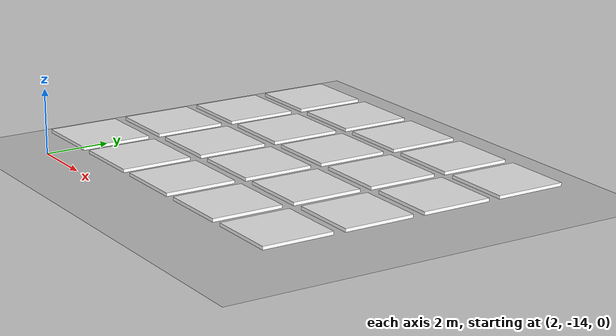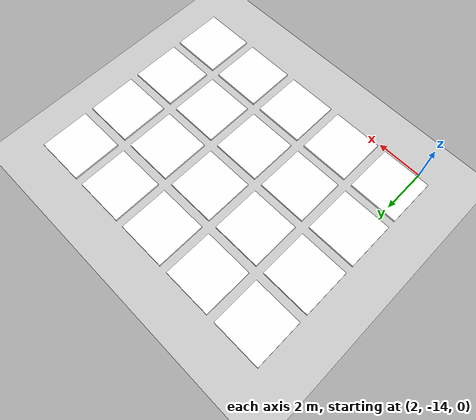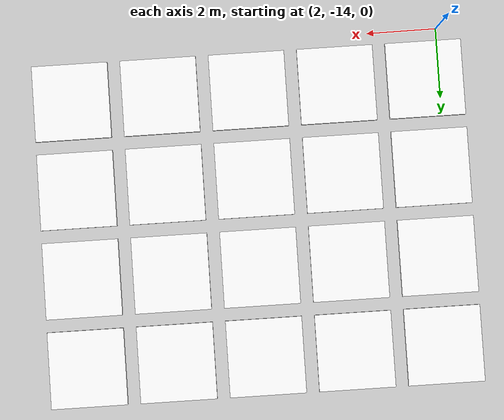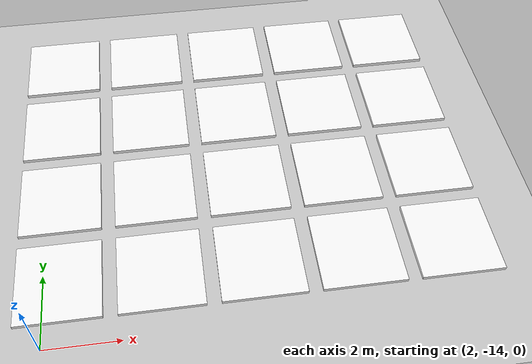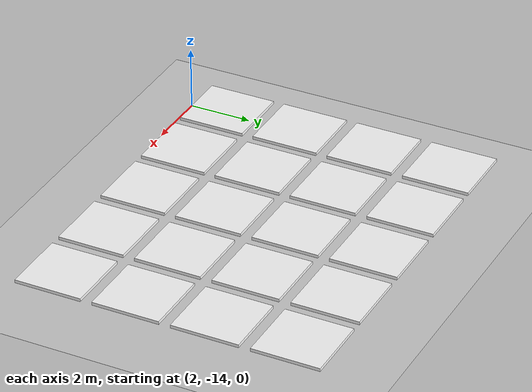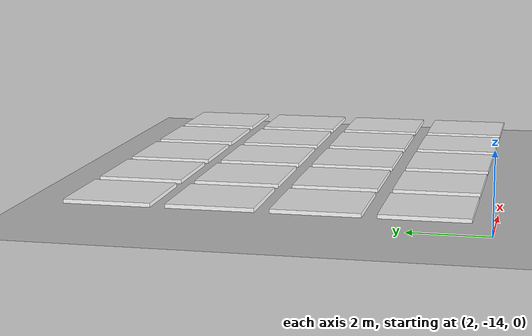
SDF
<sdf version="1.7">
 <world name="default">
  <model name="ground_plane">
   <static>1</static>
   <link name="link">
    <collision name="collision">
     <geometry><plane><normal>0 0 1</normal><size>100 100</size></plane></geometry>
     <surface>
      <contact><collide_bitmask>65535</collide_bitmask></contact>
      <friction><ode><mu>100</mu><mu2>50</mu2></ode></friction>
     </surface>
    </collision>
    <visual name="visual">
     <cast_shadows>0</cast_shadows>
     <geometry><plane><normal>0 0 1</normal><size>100 100</size></plane></geometry>
     <material>
      <script><uri>file://media/materials/scripts/gazebo.material</uri><name>Gazebo/Grey</name></script>
     </material>
    </visual>
   </link>
  </model>
  <model name="top_view_fuel_cluster_1_6">
   <link name="link">
    <inertial>
     <mass>0.489843</mass>
     <inertia>
      <ixx>0.0410659</ixx>
      <ixy>0</ixy>
      <ixz>0</ixz>
      <iyy>0.0410658</iyy>
      <iyz>0</iyz>
      <izz>0.0816405</izz>
     </inertia>
    </inertial>
    <visual name="visual">
     <geometry><box><size>2.14 2.14 0.099999</size></box></geometry>
     <material>
      <script>
       <uri>model://top_view_fuel_cluster/materials/scripts</uri>
       <uri>model://top_view_fuel_cluster/materials/textures</uri>
       <name>snf/Diffuse</name>
      </script>
      <shader type="pixel"><normal_map>__default__</normal_map></shader>
      <ambient>0.3 0.3 0.3 1</ambient>
      <diffuse>1 1 1 1</diffuse>
      <specular>0.01 0.01 0.01 1</specular>
      <emissive>0 0 0 1</emissive>
     </material>
    </visual>
    <collision name="collision">
     <geometry><box><size>2.14 2.14 0.100001</size></box></geometry>
     <surface>
      <friction>
       <ode><mu>1</mu><mu2>1</mu2><fdir1>0 0 0</fdir1><slip1>0</slip1><slip2>0</slip2></ode>
       <torsional>
        <coefficient>1</coefficient>
        <patch_radius>0</patch_radius>
        <surface_radius>0</surface_radius>
        <use_patch_radius>1</use_patch_radius>
        <ode><slip>0</slip></ode>
       </torsional>
      </friction>
      <bounce><restitution_coefficient>0</restitution_coefficient><threshold>1e+06</threshold></bounce>
      <contact>
       <collide_without_contact>0</collide_without_contact>
       <collide_without_contact_bitmask>1</collide_without_contact_bitmask>
       <collide_bitmask>1</collide_bitmask>
       <ode>
        <soft_cfm>0</soft_cfm>
        <soft_erp>0.2</soft_erp>
        <kp>1e+13</kp>
        <kd>1</kd>
        <max_vel>0.01</max_vel>
        <min_depth>0</min_depth>
       </ode>
       <bullet>
        <split_impulse>1</split_impulse>
        <split_impulse_penetration_threshold>-0.01</split_impulse_penetration_threshold>
        <soft_cfm>0</soft_cfm>
        <soft_erp>0.2</soft_erp>
        <kp>1e+13</kp>
        <kd>1</kd>
       </bullet>
      </contact>
     </surface>
    </collision>
   </link>
   <static>0</static>
   <pose>2.5 -12.5 0.5 0 -0 0</pose>
  </model>
  <model name="top_view_fuel_cluster_1_7">
   <link name="link">
    <inertial>
     <mass>0.489843</mass>
     <inertia>
      <ixx>0.0410659</ixx>
      <ixy>0</ixy>
      <ixz>0</ixz>
      <iyy>0.0410658</iyy>
      <iyz>0</iyz>
      <izz>0.0816405</izz>
     </inertia>
    </inertial>
    <visual name="visual">
     <geometry><box><size>2.14 2.14 0.099999</size></box></geometry>
     <material>
      <script>
       <uri>model://top_view_fuel_cluster/materials/scripts</uri>
       <uri>model://top_view_fuel_cluster/materials/textures</uri>
       <name>snf/Diffuse</name>
      </script>
      <shader type="pixel"><normal_map>__default__</normal_map></shader>
      <ambient>0.3 0.3 0.3 1</ambient>
      <diffuse>1 1 1 1</diffuse>
      <specular>0.01 0.01 0.01 1</specular>
      <emissive>0 0 0 1</emissive>
     </material>
    </visual>
    <collision name="collision">
     <geometry><box><size>2.14 2.14 0.100001</size></box></geometry>
     <surface>
      <friction>
       <ode><mu>1</mu><mu2>1</mu2><fdir1>0 0 0</fdir1><slip1>0</slip1><slip2>0</slip2></ode>
       <torsional>
        <coefficient>1</coefficient>
        <patch_radius>0</patch_radius>
        <surface_radius>0</surface_radius>
        <use_patch_radius>1</use_patch_radius>
        <ode><slip>0</slip></ode>
       </torsional>
      </friction>
      <bounce><restitution_coefficient>0</restitution_coefficient><threshold>1e+06</threshold></bounce>
      <contact>
       <collide_without_contact>0</collide_without_contact>
       <collide_without_contact_bitmask>1</collide_without_contact_bitmask>
       <collide_bitmask>1</collide_bitmask>
       <ode>
        <soft_cfm>0</soft_cfm>
        <soft_erp>0.2</soft_erp>
        <kp>1e+13</kp>
        <kd>1</kd>
        <max_vel>0.01</max_vel>
        <min_depth>0</min_depth>
       </ode>
       <bullet>
        <split_impulse>1</split_impulse>
        <split_impulse_penetration_threshold>-0.01</split_impulse_penetration_threshold>
        <soft_cfm>0</soft_cfm>
        <soft_erp>0.2</soft_erp>
        <kp>1e+13</kp>
        <kd>1</kd>
       </bullet>
      </contact>
     </surface>
    </collision>
   </link>
   <static>0</static>
   <pose>5 -12.5 0.5 0 -0 0</pose>
  </model>
  <model name="top_view_fuel_cluster_1_8">
   <link name="link">
    <inertial>
     <mass>0.489843</mass>
     <inertia>
      <ixx>0.0410659</ixx>
      <ixy>0</ixy>
      <ixz>0</ixz>
      <iyy>0.0410658</iyy>
      <iyz>0</iyz>
      <izz>0.0816405</izz>
     </inertia>
    </inertial>
    <visual name="visual">
     <geometry><box><size>2.14 2.14 0.099999</size></box></geometry>
     <material>
      <script>
       <uri>model://top_view_fuel_cluster/materials/scripts</uri>
       <uri>model://top_view_fuel_cluster/materials/textures</uri>
       <name>snf/Diffuse</name>
      </script>
      <shader type="pixel"><normal_map>__default__</normal_map></shader>
      <ambient>0.3 0.3 0.3 1</ambient>
      <diffuse>1 1 1 1</diffuse>
      <specular>0.01 0.01 0.01 1</specular>
      <emissive>0 0 0 1</emissive>
     </material>
    </visual>
    <collision name="collision">
     <geometry><box><size>2.14 2.14 0.100001</size></box></geometry>
     <surface>
      <friction>
       <ode><mu>1</mu><mu2>1</mu2><fdir1>0 0 0</fdir1><slip1>0</slip1><slip2>0</slip2></ode>
       <torsional>
        <coefficient>1</coefficient>
        <patch_radius>0</patch_radius>
        <surface_radius>0</surface_radius>
        <use_patch_radius>1</use_patch_radius>
        <ode><slip>0</slip></ode>
       </torsional>
      </friction>
      <bounce><restitution_coefficient>0</restitution_coefficient><threshold>1e+06</threshold></bounce>
      <contact>
       <collide_without_contact>0</collide_without_contact>
       <collide_without_contact_bitmask>1</collide_without_contact_bitmask>
       <collide_bitmask>1</collide_bitmask>
       <ode>
        <soft_cfm>0</soft_cfm>
        <soft_erp>0.2</soft_erp>
        <kp>1e+13</kp>
        <kd>1</kd>
        <max_vel>0.01</max_vel>
        <min_depth>0</min_depth>
       </ode>
       <bullet>
        <split_impulse>1</split_impulse>
        <split_impulse_penetration_threshold>-0.01</split_impulse_penetration_threshold>
        <soft_cfm>0</soft_cfm>
        <soft_erp>0.2</soft_erp>
        <kp>1e+13</kp>
        <kd>1</kd>
       </bullet>
      </contact>
     </surface>
    </collision>
   </link>
   <static>0</static>
   <pose>7.5 -12.5 0.5 0 -0 0</pose>
  </model>
  <model name="top_view_fuel_cluster_1_9">
   <link name="link">
    <inertial>
     <mass>0.489843</mass>
     <inertia>
      <ixx>0.0410659</ixx>
      <ixy>0</ixy>
      <ixz>0</ixz>
      <iyy>0.0410658</iyy>
      <iyz>0</iyz>
      <izz>0.0816405</izz>
     </inertia>
    </inertial>
    <visual name="visual">
     <geometry><box><size>2.14 2.14 0.099999</size></box></geometry>
     <material>
      <script>
       <uri>model://top_view_fuel_cluster/materials/scripts</uri>
       <uri>model://top_view_fuel_cluster/materials/textures</uri>
       <name>snf/Diffuse</name>
      </script>
      <shader type="pixel"><normal_map>__default__</normal_map></shader>
      <ambient>0.3 0.3 0.3 1</ambient>
      <diffuse>1 1 1 1</diffuse>
      <specular>0.01 0.01 0.01 1</specular>
      <emissive>0 0 0 1</emissive>
     </material>
    </visual>
    <collision name="collision">
     <geometry><box><size>2.14 2.14 0.100001</size></box></geometry>
     <surface>
      <friction>
       <ode><mu>1</mu><mu2>1</mu2><fdir1>0 0 0</fdir1><slip1>0</slip1><slip2>0</slip2></ode>
       <torsional>
        <coefficient>1</coefficient>
        <patch_radius>0</patch_radius>
        <surface_radius>0</surface_radius>
        <use_patch_radius>1</use_patch_radius>
        <ode><slip>0</slip></ode>
       </torsional>
      </friction>
      <bounce><restitution_coefficient>0</restitution_coefficient><threshold>1e+06</threshold></bounce>
      <contact>
       <collide_without_contact>0</collide_without_contact>
       <collide_without_contact_bitmask>1</collide_without_contact_bitmask>
       <collide_bitmask>1</collide_bitmask>
       <ode>
        <soft_cfm>0</soft_cfm>
        <soft_erp>0.2</soft_erp>
        <kp>1e+13</kp>
        <kd>1</kd>
        <max_vel>0.01</max_vel>
        <min_depth>0</min_depth>
       </ode>
       <bullet>
        <split_impulse>1</split_impulse>
        <split_impulse_penetration_threshold>-0.01</split_impulse_penetration_threshold>
        <soft_cfm>0</soft_cfm>
        <soft_erp>0.2</soft_erp>
        <kp>1e+13</kp>
        <kd>1</kd>
       </bullet>
      </contact>
     </surface>
    </collision>
   </link>
   <static>0</static>
   <pose>10 -12.5 0.5 0 -0 0</pose>
  </model>
  <model name="top_view_fuel_cluster_1_10">
   <link name="link">
    <inertial>
     <mass>0.489843</mass>
     <inertia>
      <ixx>0.0410659</ixx>
      <ixy>0</ixy>
      <ixz>0</ixz>
      <iyy>0.0410658</iyy>
      <iyz>0</iyz>
      <izz>0.0816405</izz>
     </inertia>
    </inertial>
    <visual name="visual">
     <geometry><box><size>2.14 2.14 0.099999</size></box></geometry>
     <material>
      <script>
       <uri>model://top_view_fuel_cluster/materials/scripts</uri>
       <uri>model://top_view_fuel_cluster/materials/textures</uri>
       <name>snf/Diffuse</name>
      </script>
      <shader type="pixel"><normal_map>__default__</normal_map></shader>
      <ambient>0.3 0.3 0.3 1</ambient>
      <diffuse>1 1 1 1</diffuse>
      <specular>0.01 0.01 0.01 1</specular>
      <emissive>0 0 0 1</emissive>
     </material>
    </visual>
    <collision name="collision">
     <geometry><box><size>2.14 2.14 0.100001</size></box></geometry>
     <surface>
      <friction>
       <ode><mu>1</mu><mu2>1</mu2><fdir1>0 0 0</fdir1><slip1>0</slip1><slip2>0</slip2></ode>
       <torsional>
        <coefficient>1</coefficient>
        <patch_radius>0</patch_radius>
        <surface_radius>0</surface_radius>
        <use_patch_radius>1</use_patch_radius>
        <ode><slip>0</slip></ode>
       </torsional>
      </friction>
      <bounce><restitution_coefficient>0</restitution_coefficient><threshold>1e+06</threshold></bounce>
      <contact>
       <collide_without_contact>0</collide_without_contact>
       <collide_without_contact_bitmask>1</collide_without_contact_bitmask>
       <collide_bitmask>1</collide_bitmask>
       <ode>
        <soft_cfm>0</soft_cfm>
        <soft_erp>0.2</soft_erp>
        <kp>1e+13</kp>
        <kd>1</kd>
        <max_vel>0.01</max_vel>
        <min_depth>0</min_depth>
       </ode>
       <bullet>
        <split_impulse>1</split_impulse>
        <split_impulse_penetration_threshold>-0.01</split_impulse_penetration_threshold>
        <soft_cfm>0</soft_cfm>
        <soft_erp>0.2</soft_erp>
        <kp>1e+13</kp>
        <kd>1</kd>
       </bullet>
      </contact>
     </surface>
    </collision>
   </link>
   <static>0</static>
   <pose>12.5 -12.5 0.5 0 -0 0</pose>
  </model>
  <model name="top_view_fuel_cluster_2_6">
   <link name="link">
    <inertial>
     <mass>0.489843</mass>
     <inertia>
      <ixx>0.0410659</ixx>
      <ixy>0</ixy>
      <ixz>0</ixz>
      <iyy>0.0410658</iyy>
      <iyz>0</iyz>
      <izz>0.0816405</izz>
     </inertia>
    </inertial>
    <visual name="visual">
     <geometry><box><size>2.14 2.14 0.099999</size></box></geometry>
     <material>
      <script>
       <uri>model://top_view_fuel_cluster/materials/scripts</uri>
       <uri>model://top_view_fuel_cluster/materials/textures</uri>
       <name>snf/Diffuse</name>
      </script>
      <shader type="pixel"><normal_map>__default__</normal_map></shader>
      <ambient>0.3 0.3 0.3 1</ambient>
      <diffuse>1 1 1 1</diffuse>
      <specular>0.01 0.01 0.01 1</specular>
      <emissive>0 0 0 1</emissive>
     </material>
    </visual>
    <collision name="collision">
     <geometry><box><size>2.14 2.14 0.100001</size></box></geometry>
     <surface>
      <friction>
       <ode><mu>1</mu><mu2>1</mu2><fdir1>0 0 0</fdir1><slip1>0</slip1><slip2>0</slip2></ode>
       <torsional>
        <coefficient>1</coefficient>
        <patch_radius>0</patch_radius>
        <surface_radius>0</surface_radius>
        <use_patch_radius>1</use_patch_radius>
        <ode><slip>0</slip></ode>
       </torsional>
      </friction>
      <bounce><restitution_coefficient>0</restitution_coefficient><threshold>1e+06</threshold></bounce>
      <contact>
       <collide_without_contact>0</collide_without_contact>
       <collide_without_contact_bitmask>1</collide_without_contact_bitmask>
       <collide_bitmask>1</collide_bitmask>
       <ode>
        <soft_cfm>0</soft_cfm>
        <soft_erp>0.2</soft_erp>
        <kp>1e+13</kp>
        <kd>1</kd>
        <max_vel>0.01</max_vel>
        <min_depth>0</min_depth>
       </ode>
       <bullet>
        <split_impulse>1</split_impulse>
        <split_impulse_penetration_threshold>-0.01</split_impulse_penetration_threshold>
        <soft_cfm>0</soft_cfm>
        <soft_erp>0.2</soft_erp>
        <kp>1e+13</kp>
        <kd>1</kd>
       </bullet>
      </contact>
     </surface>
    </collision>
   </link>
   <static>0</static>
   <pose>2.5 -10 0.5 0 -0 0</pose>
  </model>
  <model name="top_view_fuel_cluster_2_7">
   <link name="link">
    <inertial>
     <mass>0.489843</mass>
     <inertia>
      <ixx>0.0410659</ixx>
      <ixy>0</ixy>
      <ixz>0</ixz>
      <iyy>0.0410658</iyy>
      <iyz>0</iyz>
      <izz>0.0816405</izz>
     </inertia>
    </inertial>
    <visual name="visual">
     <geometry><box><size>2.14 2.14 0.099999</size></box></geometry>
     <material>
      <script>
       <uri>model://top_view_fuel_cluster/materials/scripts</uri>
       <uri>model://top_view_fuel_cluster/materials/textures</uri>
       <name>snf/Diffuse</name>
      </script>
      <shader type="pixel"><normal_map>__default__</normal_map></shader>
      <ambient>0.3 0.3 0.3 1</ambient>
      <diffuse>1 1 1 1</diffuse>
      <specular>0.01 0.01 0.01 1</specular>
      <emissive>0 0 0 1</emissive>
     </material>
    </visual>
    <collision name="collision">
     <geometry><box><size>2.14 2.14 0.100001</size></box></geometry>
     <surface>
      <friction>
       <ode><mu>1</mu><mu2>1</mu2><fdir1>0 0 0</fdir1><slip1>0</slip1><slip2>0</slip2></ode>
       <torsional>
        <coefficient>1</coefficient>
        <patch_radius>0</patch_radius>
        <surface_radius>0</surface_radius>
        <use_patch_radius>1</use_patch_radius>
        <ode><slip>0</slip></ode>
       </torsional>
      </friction>
      <bounce><restitution_coefficient>0</restitution_coefficient><threshold>1e+06</threshold></bounce>
      <contact>
       <collide_without_contact>0</collide_without_contact>
       <collide_without_contact_bitmask>1</collide_without_contact_bitmask>
       <collide_bitmask>1</collide_bitmask>
       <ode>
        <soft_cfm>0</soft_cfm>
        <soft_erp>0.2</soft_erp>
        <kp>1e+13</kp>
        <kd>1</kd>
        <max_vel>0.01</max_vel>
        <min_depth>0</min_depth>
       </ode>
       <bullet>
        <split_impulse>1</split_impulse>
        <split_impulse_penetration_threshold>-0.01</split_impulse_penetration_threshold>
        <soft_cfm>0</soft_cfm>
        <soft_erp>0.2</soft_erp>
        <kp>1e+13</kp>
        <kd>1</kd>
       </bullet>
      </contact>
     </surface>
    </collision>
   </link>
   <static>0</static>
   <pose>5 -10 0.5 0 -0 0</pose>
  </model>
  <model name="top_view_fuel_cluster_2_8">
   <link name="link">
    <inertial>
     <mass>0.489843</mass>
     <inertia>
      <ixx>0.0410659</ixx>
      <ixy>0</ixy>
      <ixz>0</ixz>
      <iyy>0.0410658</iyy>
      <iyz>0</iyz>
      <izz>0.0816405</izz>
     </inertia>
    </inertial>
    <visual name="visual">
     <geometry><box><size>2.14 2.14 0.099999</size></box></geometry>
     <material>
      <script>
       <uri>model://top_view_fuel_cluster/materials/scripts</uri>
       <uri>model://top_view_fuel_cluster/materials/textures</uri>
       <name>snf/Diffuse</name>
      </script>
      <shader type="pixel"><normal_map>__default__</normal_map></shader>
      <ambient>0.3 0.3 0.3 1</ambient>
      <diffuse>1 1 1 1</diffuse>
      <specular>0.01 0.01 0.01 1</specular>
      <emissive>0 0 0 1</emissive>
     </material>
    </visual>
    <collision name="collision">
     <geometry><box><size>2.14 2.14 0.100001</size></box></geometry>
     <surface>
      <friction>
       <ode><mu>1</mu><mu2>1</mu2><fdir1>0 0 0</fdir1><slip1>0</slip1><slip2>0</slip2></ode>
       <torsional>
        <coefficient>1</coefficient>
        <patch_radius>0</patch_radius>
        <surface_radius>0</surface_radius>
        <use_patch_radius>1</use_patch_radius>
        <ode><slip>0</slip></ode>
       </torsional>
      </friction>
      <bounce><restitution_coefficient>0</restitution_coefficient><threshold>1e+06</threshold></bounce>
      <contact>
       <collide_without_contact>0</collide_without_contact>
       <collide_without_contact_bitmask>1</collide_without_contact_bitmask>
       <collide_bitmask>1</collide_bitmask>
       <ode>
        <soft_cfm>0</soft_cfm>
        <soft_erp>0.2</soft_erp>
        <kp>1e+13</kp>
        <kd>1</kd>
        <max_vel>0.01</max_vel>
        <min_depth>0</min_depth>
       </ode>
       <bullet>
        <split_impulse>1</split_impulse>
        <split_impulse_penetration_threshold>-0.01</split_impulse_penetration_threshold>
        <soft_cfm>0</soft_cfm>
        <soft_erp>0.2</soft_erp>
        <kp>1e+13</kp>
        <kd>1</kd>
       </bullet>
      </contact>
     </surface>
    </collision>
   </link>
   <static>0</static>
   <pose>7.5 -10 0.5 0 -0 0</pose>
  </model>
  <model name="top_view_fuel_cluster_2_9">
   <link name="link">
    <inertial>
     <mass>0.489843</mass>
     <inertia>
      <ixx>0.0410659</ixx>
      <ixy>0</ixy>
      <ixz>0</ixz>
      <iyy>0.0410658</iyy>
      <iyz>0</iyz>
      <izz>0.0816405</izz>
     </inertia>
    </inertial>
    <visual name="visual">
     <geometry><box><size>2.14 2.14 0.099999</size></box></geometry>
     <material>
      <script>
       <uri>model://top_view_fuel_cluster/materials/scripts</uri>
       <uri>model://top_view_fuel_cluster/materials/textures</uri>
       <name>snf/Diffuse</name>
      </script>
      <shader type="pixel"><normal_map>__default__</normal_map></shader>
      <ambient>0.3 0.3 0.3 1</ambient>
      <diffuse>1 1 1 1</diffuse>
      <specular>0.01 0.01 0.01 1</specular>
      <emissive>0 0 0 1</emissive>
     </material>
    </visual>
    <collision name="collision">
     <geometry><box><size>2.14 2.14 0.100001</size></box></geometry>
     <surface>
      <friction>
       <ode><mu>1</mu><mu2>1</mu2><fdir1>0 0 0</fdir1><slip1>0</slip1><slip2>0</slip2></ode>
       <torsional>
        <coefficient>1</coefficient>
        <patch_radius>0</patch_radius>
        <surface_radius>0</surface_radius>
        <use_patch_radius>1</use_patch_radius>
        <ode><slip>0</slip></ode>
       </torsional>
      </friction>
      <bounce><restitution_coefficient>0</restitution_coefficient><threshold>1e+06</threshold></bounce>
      <contact>
       <collide_without_contact>0</collide_without_contact>
       <collide_without_contact_bitmask>1</collide_without_contact_bitmask>
       <collide_bitmask>1</collide_bitmask>
       <ode>
        <soft_cfm>0</soft_cfm>
        <soft_erp>0.2</soft_erp>
        <kp>1e+13</kp>
        <kd>1</kd>
        <max_vel>0.01</max_vel>
        <min_depth>0</min_depth>
       </ode>
       <bullet>
        <split_impulse>1</split_impulse>
        <split_impulse_penetration_threshold>-0.01</split_impulse_penetration_threshold>
        <soft_cfm>0</soft_cfm>
        <soft_erp>0.2</soft_erp>
        <kp>1e+13</kp>
        <kd>1</kd>
       </bullet>
      </contact>
     </surface>
    </collision>
   </link>
   <static>0</static>
   <pose>10 -10 0.5 0 -0 0</pose>
  </model>
  <model name="top_view_fuel_cluster_2_10">
   <link name="link">
    <inertial>
     <mass>0.489843</mass>
     <inertia>
      <ixx>0.0410659</ixx>
      <ixy>0</ixy>
      <ixz>0</ixz>
      <iyy>0.0410658</iyy>
      <iyz>0</iyz>
      <izz>0.0816405</izz>
     </inertia>
    </inertial>
    <visual name="visual">
     <geometry><box><size>2.14 2.14 0.099999</size></box></geometry>
     <material>
      <script>
       <uri>model://top_view_fuel_cluster/materials/scripts</uri>
       <uri>model://top_view_fuel_cluster/materials/textures</uri>
       <name>snf/Diffuse</name>
      </script>
      <shader type="pixel"><normal_map>__default__</normal_map></shader>
      <ambient>0.3 0.3 0.3 1</ambient>
      <diffuse>1 1 1 1</diffuse>
      <specular>0.01 0.01 0.01 1</specular>
      <emissive>0 0 0 1</emissive>
     </material>
    </visual>
    <collision name="collision">
     <geometry><box><size>2.14 2.14 0.100001</size></box></geometry>
     <surface>
      <friction>
       <ode><mu>1</mu><mu2>1</mu2><fdir1>0 0 0</fdir1><slip1>0</slip1><slip2>0</slip2></ode>
       <torsional>
        <coefficient>1</coefficient>
        <patch_radius>0</patch_radius>
        <surface_radius>0</surface_radius>
        <use_patch_radius>1</use_patch_radius>
        <ode><slip>0</slip></ode>
       </torsional>
      </friction>
      <bounce><restitution_coefficient>0</restitution_coefficient><threshold>1e+06</threshold></bounce>
      <contact>
       <collide_without_contact>0</collide_without_contact>
       <collide_without_contact_bitmask>1</collide_without_contact_bitmask>
       <collide_bitmask>1</collide_bitmask>
       <ode>
        <soft_cfm>0</soft_cfm>
        <soft_erp>0.2</soft_erp>
        <kp>1e+13</kp>
        <kd>1</kd>
        <max_vel>0.01</max_vel>
        <min_depth>0</min_depth>
       </ode>
       <bullet>
        <split_impulse>1</split_impulse>
        <split_impulse_penetration_threshold>-0.01</split_impulse_penetration_threshold>
        <soft_cfm>0</soft_cfm>
        <soft_erp>0.2</soft_erp>
        <kp>1e+13</kp>
        <kd>1</kd>
       </bullet>
      </contact>
     </surface>
    </collision>
   </link>
   <static>0</static>
   <pose>12.5 -10 0.5 0 -0 0</pose>
  </model>
  <model name="top_view_fuel_cluster_3_6">
   <link name="link">
    <inertial>
     <mass>0.489843</mass>
     <inertia>
      <ixx>0.0410659</ixx>
      <ixy>0</ixy>
      <ixz>0</ixz>
      <iyy>0.0410658</iyy>
      <iyz>0</iyz>
      <izz>0.0816405</izz>
     </inertia>
    </inertial>
    <visual name="visual">
     <geometry><box><size>2.14 2.14 0.099999</size></box></geometry>
     <material>
      <script>
       <uri>model://top_view_fuel_cluster/materials/scripts</uri>
       <uri>model://top_view_fuel_cluster/materials/textures</uri>
       <name>snf/Diffuse</name>
      </script>
      <shader type="pixel"><normal_map>__default__</normal_map></shader>
      <ambient>0.3 0.3 0.3 1</ambient>
      <diffuse>1 1 1 1</diffuse>
      <specular>0.01 0.01 0.01 1</specular>
      <emissive>0 0 0 1</emissive>
     </material>
    </visual>
    <collision name="collision">
     <geometry><box><size>2.14 2.14 0.100001</size></box></geometry>
     <surface>
      <friction>
       <ode><mu>1</mu><mu2>1</mu2><fdir1>0 0 0</fdir1><slip1>0</slip1><slip2>0</slip2></ode>
       <torsional>
        <coefficient>1</coefficient>
        <patch_radius>0</patch_radius>
        <surface_radius>0</surface_radius>
        <use_patch_radius>1</use_patch_radius>
        <ode><slip>0</slip></ode>
       </torsional>
      </friction>
      <bounce><restitution_coefficient>0</restitution_coefficient><threshold>1e+06</threshold></bounce>
      <contact>
       <collide_without_contact>0</collide_without_contact>
       <collide_without_contact_bitmask>1</collide_without_contact_bitmask>
       <collide_bitmask>1</collide_bitmask>
       <ode>
        <soft_cfm>0</soft_cfm>
        <soft_erp>0.2</soft_erp>
        <kp>1e+13</kp>
        <kd>1</kd>
        <max_vel>0.01</max_vel>
        <min_depth>0</min_depth>
       </ode>
       <bullet>
        <split_impulse>1</split_impulse>
        <split_impulse_penetration_threshold>-0.01</split_impulse_penetration_threshold>
        <soft_cfm>0</soft_cfm>
        <soft_erp>0.2</soft_erp>
        <kp>1e+13</kp>
        <kd>1</kd>
       </bullet>
      </contact>
     </surface>
    </collision>
   </link>
   <static>0</static>
   <pose>2.5 -7.5 0.5 0 -0 0</pose>
  </model>
  <model name="top_view_fuel_cluster_3_7">
   <link name="link">
    <inertial>
     <mass>0.489843</mass>
     <inertia>
      <ixx>0.0410659</ixx>
      <ixy>0</ixy>
      <ixz>0</ixz>
      <iyy>0.0410658</iyy>
      <iyz>0</iyz>
      <izz>0.0816405</izz>
     </inertia>
    </inertial>
    <visual name="visual">
     <geometry><box><size>2.14 2.14 0.099999</size></box></geometry>
     <material>
      <script>
       <uri>model://top_view_fuel_cluster/materials/scripts</uri>
       <uri>model://top_view_fuel_cluster/materials/textures</uri>
       <name>snf/Diffuse</name>
      </script>
      <shader type="pixel"><normal_map>__default__</normal_map></shader>
      <ambient>0.3 0.3 0.3 1</ambient>
      <diffuse>1 1 1 1</diffuse>
      <specular>0.01 0.01 0.01 1</specular>
      <emissive>0 0 0 1</emissive>
     </material>
    </visual>
    <collision name="collision">
     <geometry><box><size>2.14 2.14 0.100001</size></box></geometry>
     <surface>
      <friction>
       <ode><mu>1</mu><mu2>1</mu2><fdir1>0 0 0</fdir1><slip1>0</slip1><slip2>0</slip2></ode>
       <torsional>
        <coefficient>1</coefficient>
        <patch_radius>0</patch_radius>
        <surface_radius>0</surface_radius>
        <use_patch_radius>1</use_patch_radius>
        <ode><slip>0</slip></ode>
       </torsional>
      </friction>
      <bounce><restitution_coefficient>0</restitution_coefficient><threshold>1e+06</threshold></bounce>
      <contact>
       <collide_without_contact>0</collide_without_contact>
       <collide_without_contact_bitmask>1</collide_without_contact_bitmask>
       <collide_bitmask>1</collide_bitmask>
       <ode>
        <soft_cfm>0</soft_cfm>
        <soft_erp>0.2</soft_erp>
        <kp>1e+13</kp>
        <kd>1</kd>
        <max_vel>0.01</max_vel>
        <min_depth>0</min_depth>
       </ode>
       <bullet>
        <split_impulse>1</split_impulse>
        <split_impulse_penetration_threshold>-0.01</split_impulse_penetration_threshold>
        <soft_cfm>0</soft_cfm>
        <soft_erp>0.2</soft_erp>
        <kp>1e+13</kp>
        <kd>1</kd>
       </bullet>
      </contact>
     </surface>
    </collision>
   </link>
   <static>0</static>
   <pose>5 -7.5 0.5 0 -0 0</pose>
  </model>
  <model name="top_view_fuel_cluster_3_8">
   <link name="link">
    <inertial>
     <mass>0.489843</mass>
     <inertia>
      <ixx>0.0410659</ixx>
      <ixy>0</ixy>
      <ixz>0</ixz>
      <iyy>0.0410658</iyy>
      <iyz>0</iyz>
      <izz>0.0816405</izz>
     </inertia>
    </inertial>
    <visual name="visual">
     <geometry><box><size>2.14 2.14 0.099999</size></box></geometry>
     <material>
      <script>
       <uri>model://top_view_fuel_cluster/materials/scripts</uri>
       <uri>model://top_view_fuel_cluster/materials/textures</uri>
       <name>snf/Diffuse</name>
      </script>
      <shader type="pixel"><normal_map>__default__</normal_map></shader>
      <ambient>0.3 0.3 0.3 1</ambient>
      <diffuse>1 1 1 1</diffuse>
      <specular>0.01 0.01 0.01 1</specular>
      <emissive>0 0 0 1</emissive>
     </material>
    </visual>
    <collision name="collision">
     <geometry><box><size>2.14 2.14 0.100001</size></box></geometry>
     <surface>
      <friction>
       <ode><mu>1</mu><mu2>1</mu2><fdir1>0 0 0</fdir1><slip1>0</slip1><slip2>0</slip2></ode>
       <torsional>
        <coefficient>1</coefficient>
        <patch_radius>0</patch_radius>
        <surface_radius>0</surface_radius>
        <use_patch_radius>1</use_patch_radius>
        <ode><slip>0</slip></ode>
       </torsional>
      </friction>
      <bounce><restitution_coefficient>0</restitution_coefficient><threshold>1e+06</threshold></bounce>
      <contact>
       <collide_without_contact>0</collide_without_contact>
       <collide_without_contact_bitmask>1</collide_without_contact_bitmask>
       <collide_bitmask>1</collide_bitmask>
       <ode>
        <soft_cfm>0</soft_cfm>
        <soft_erp>0.2</soft_erp>
        <kp>1e+13</kp>
        <kd>1</kd>
        <max_vel>0.01</max_vel>
        <min_depth>0</min_depth>
       </ode>
       <bullet>
        <split_impulse>1</split_impulse>
        <split_impulse_penetration_threshold>-0.01</split_impulse_penetration_threshold>
        <soft_cfm>0</soft_cfm>
        <soft_erp>0.2</soft_erp>
        <kp>1e+13</kp>
        <kd>1</kd>
       </bullet>
      </contact>
     </surface>
    </collision>
   </link>
   <static>0</static>
   <pose>7.5 -7.5 0.5 0 -0 0</pose>
  </model>
  <model name="top_view_fuel_cluster_3_9">
   <link name="link">
    <inertial>
     <mass>0.489843</mass>
     <inertia>
      <ixx>0.0410659</ixx>
      <ixy>0</ixy>
      <ixz>0</ixz>
      <iyy>0.0410658</iyy>
      <iyz>0</iyz>
      <izz>0.0816405</izz>
     </inertia>
    </inertial>
    <visual name="visual">
     <geometry><box><size>2.14 2.14 0.099999</size></box></geometry>
     <material>
      <script>
       <uri>model://top_view_fuel_cluster/materials/scripts</uri>
       <uri>model://top_view_fuel_cluster/materials/textures</uri>
       <name>snf/Diffuse</name>
      </script>
      <shader type="pixel"><normal_map>__default__</normal_map></shader>
      <ambient>0.3 0.3 0.3 1</ambient>
      <diffuse>1 1 1 1</diffuse>
      <specular>0.01 0.01 0.01 1</specular>
      <emissive>0 0 0 1</emissive>
     </material>
    </visual>
    <collision name="collision">
     <geometry><box><size>2.14 2.14 0.100001</size></box></geometry>
     <surface>
      <friction>
       <ode><mu>1</mu><mu2>1</mu2><fdir1>0 0 0</fdir1><slip1>0</slip1><slip2>0</slip2></ode>
       <torsional>
        <coefficient>1</coefficient>
        <patch_radius>0</patch_radius>
        <surface_radius>0</surface_radius>
        <use_patch_radius>1</use_patch_radius>
        <ode><slip>0</slip></ode>
       </torsional>
      </friction>
      <bounce><restitution_coefficient>0</restitution_coefficient><threshold>1e+06</threshold></bounce>
      <contact>
       <collide_without_contact>0</collide_without_contact>
       <collide_without_contact_bitmask>1</collide_without_contact_bitmask>
       <collide_bitmask>1</collide_bitmask>
       <ode>
        <soft_cfm>0</soft_cfm>
        <soft_erp>0.2</soft_erp>
        <kp>1e+13</kp>
        <kd>1</kd>
        <max_vel>0.01</max_vel>
        <min_depth>0</min_depth>
       </ode>
       <bullet>
        <split_impulse>1</split_impulse>
        <split_impulse_penetration_threshold>-0.01</split_impulse_penetration_threshold>
        <soft_cfm>0</soft_cfm>
        <soft_erp>0.2</soft_erp>
        <kp>1e+13</kp>
        <kd>1</kd>
       </bullet>
      </contact>
     </surface>
    </collision>
   </link>
   <static>0</static>
   <pose>10 -7.5 0.5 0 -0 0</pose>
  </model>
  <model name="top_view_fuel_cluster_3_10">
   <link name="link">
    <inertial>
     <mass>0.489843</mass>
     <inertia>
      <ixx>0.0410659</ixx>
      <ixy>0</ixy>
      <ixz>0</ixz>
      <iyy>0.0410658</iyy>
      <iyz>0</iyz>
      <izz>0.0816405</izz>
     </inertia>
    </inertial>
    <visual name="visual">
     <geometry><box><size>2.14 2.14 0.099999</size></box></geometry>
     <material>
      <script>
       <uri>model://top_view_fuel_cluster/materials/scripts</uri>
       <uri>model://top_view_fuel_cluster/materials/textures</uri>
       <name>snf/Diffuse</name>
      </script>
      <shader type="pixel"><normal_map>__default__</normal_map></shader>
      <ambient>0.3 0.3 0.3 1</ambient>
      <diffuse>1 1 1 1</diffuse>
      <specular>0.01 0.01 0.01 1</specular>
      <emissive>0 0 0 1</emissive>
     </material>
    </visual>
    <collision name="collision">
     <geometry><box><size>2.14 2.14 0.100001</size></box></geometry>
     <surface>
      <friction>
       <ode><mu>1</mu><mu2>1</mu2><fdir1>0 0 0</fdir1><slip1>0</slip1><slip2>0</slip2></ode>
       <torsional>
        <coefficient>1</coefficient>
        <patch_radius>0</patch_radius>
        <surface_radius>0</surface_radius>
        <use_patch_radius>1</use_patch_radius>
        <ode><slip>0</slip></ode>
       </torsional>
      </friction>
      <bounce><restitution_coefficient>0</restitution_coefficient><threshold>1e+06</threshold></bounce>
      <contact>
       <collide_without_contact>0</collide_without_contact>
       <collide_without_contact_bitmask>1</collide_without_contact_bitmask>
       <collide_bitmask>1</collide_bitmask>
       <ode>
        <soft_cfm>0</soft_cfm>
        <soft_erp>0.2</soft_erp>
        <kp>1e+13</kp>
        <kd>1</kd>
        <max_vel>0.01</max_vel>
        <min_depth>0</min_depth>
       </ode>
       <bullet>
        <split_impulse>1</split_impulse>
        <split_impulse_penetration_threshold>-0.01</split_impulse_penetration_threshold>
        <soft_cfm>0</soft_cfm>
        <soft_erp>0.2</soft_erp>
        <kp>1e+13</kp>
        <kd>1</kd>
       </bullet>
      </contact>
     </surface>
    </collision>
   </link>
   <static>0</static>
   <pose>12.5 -7.5 0.5 0 -0 0</pose>
  </model>
  <model name="top_view_fuel_cluster_4_6">
   <link name="link">
    <inertial>
     <mass>0.489843</mass>
     <inertia>
      <ixx>0.0410659</ixx>
      <ixy>0</ixy>
      <ixz>0</ixz>
      <iyy>0.0410658</iyy>
      <iyz>0</iyz>
      <izz>0.0816405</izz>
     </inertia>
    </inertial>
    <visual name="visual">
     <geometry><box><size>2.14 2.14 0.099999</size></box></geometry>
     <material>
      <script>
       <uri>model://top_view_fuel_cluster/materials/scripts</uri>
       <uri>model://top_view_fuel_cluster/materials/textures</uri>
       <name>snf/Diffuse</name>
      </script>
      <shader type="pixel"><normal_map>__default__</normal_map></shader>
      <ambient>0.3 0.3 0.3 1</ambient>
      <diffuse>1 1 1 1</diffuse>
      <specular>0.01 0.01 0.01 1</specular>
      <emissive>0 0 0 1</emissive>
     </material>
    </visual>
    <collision name="collision">
     <geometry><box><size>2.14 2.14 0.100001</size></box></geometry>
     <surface>
      <friction>
       <ode><mu>1</mu><mu2>1</mu2><fdir1>0 0 0</fdir1><slip1>0</slip1><slip2>0</slip2></ode>
       <torsional>
        <coefficient>1</coefficient>
        <patch_radius>0</patch_radius>
        <surface_radius>0</surface_radius>
        <use_patch_radius>1</use_patch_radius>
        <ode><slip>0</slip></ode>
       </torsional>
      </friction>
      <bounce><restitution_coefficient>0</restitution_coefficient><threshold>1e+06</threshold></bounce>
      <contact>
       <collide_without_contact>0</collide_without_contact>
       <collide_without_contact_bitmask>1</collide_without_contact_bitmask>
       <collide_bitmask>1</collide_bitmask>
       <ode>
        <soft_cfm>0</soft_cfm>
        <soft_erp>0.2</soft_erp>
        <kp>1e+13</kp>
        <kd>1</kd>
        <max_vel>0.01</max_vel>
        <min_depth>0</min_depth>
       </ode>
       <bullet>
        <split_impulse>1</split_impulse>
        <split_impulse_penetration_threshold>-0.01</split_impulse_penetration_threshold>
        <soft_cfm>0</soft_cfm>
        <soft_erp>0.2</soft_erp>
        <kp>1e+13</kp>
        <kd>1</kd>
       </bullet>
      </contact>
     </surface>
    </collision>
   </link>
   <static>0</static>
   <pose>2.5 -5 0.5 0 -0 0</pose>
  </model>
  <model name="top_view_fuel_cluster_4_7">
   <link name="link">
    <inertial>
     <mass>0.489843</mass>
     <inertia>
      <ixx>0.0410659</ixx>
      <ixy>0</ixy>
      <ixz>0</ixz>
      <iyy>0.0410658</iyy>
      <iyz>0</iyz>
      <izz>0.0816405</izz>
     </inertia>
    </inertial>
    <visual name="visual">
     <geometry><box><size>2.14 2.14 0.099999</size></box></geometry>
     <material>
      <script>
       <uri>model://top_view_fuel_cluster/materials/scripts</uri>
       <uri>model://top_view_fuel_cluster/materials/textures</uri>
       <name>snf/Diffuse</name>
      </script>
      <shader type="pixel"><normal_map>__default__</normal_map></shader>
      <ambient>0.3 0.3 0.3 1</ambient>
      <diffuse>1 1 1 1</diffuse>
      <specular>0.01 0.01 0.01 1</specular>
      <emissive>0 0 0 1</emissive>
     </material>
    </visual>
    <collision name="collision">
     <geometry><box><size>2.14 2.14 0.100001</size></box></geometry>
     <surface>
      <friction>
       <ode><mu>1</mu><mu2>1</mu2><fdir1>0 0 0</fdir1><slip1>0</slip1><slip2>0</slip2></ode>
       <torsional>
        <coefficient>1</coefficient>
        <patch_radius>0</patch_radius>
        <surface_radius>0</surface_radius>
        <use_patch_radius>1</use_patch_radius>
        <ode><slip>0</slip></ode>
       </torsional>
      </friction>
      <bounce><restitution_coefficient>0</restitution_coefficient><threshold>1e+06</threshold></bounce>
      <contact>
       <collide_without_contact>0</collide_without_contact>
       <collide_without_contact_bitmask>1</collide_without_contact_bitmask>
       <collide_bitmask>1</collide_bitmask>
       <ode>
        <soft_cfm>0</soft_cfm>
        <soft_erp>0.2</soft_erp>
        <kp>1e+13</kp>
        <kd>1</kd>
        <max_vel>0.01</max_vel>
        <min_depth>0</min_depth>
       </ode>
       <bullet>
        <split_impulse>1</split_impulse>
        <split_impulse_penetration_threshold>-0.01</split_impulse_penetration_threshold>
        <soft_cfm>0</soft_cfm>
        <soft_erp>0.2</soft_erp>
        <kp>1e+13</kp>
        <kd>1</kd>
       </bullet>
      </contact>
     </surface>
    </collision>
   </link>
   <static>0</static>
   <pose>5 -5 0.5 0 -0 0</pose>
  </model>
  <model name="top_view_fuel_cluster_4_8">
   <link name="link">
    <inertial>
     <mass>0.489843</mass>
     <inertia>
      <ixx>0.0410659</ixx>
      <ixy>0</ixy>
      <ixz>0</ixz>
      <iyy>0.0410658</iyy>
      <iyz>0</iyz>
      <izz>0.0816405</izz>
     </inertia>
    </inertial>
    <visual name="visual">
     <geometry><box><size>2.14 2.14 0.099999</size></box></geometry>
     <material>
      <script>
       <uri>model://top_view_fuel_cluster/materials/scripts</uri>
       <uri>model://top_view_fuel_cluster/materials/textures</uri>
       <name>snf/Diffuse</name>
      </script>
      <shader type="pixel"><normal_map>__default__</normal_map></shader>
      <ambient>0.3 0.3 0.3 1</ambient>
      <diffuse>1 1 1 1</diffuse>
      <specular>0.01 0.01 0.01 1</specular>
      <emissive>0 0 0 1</emissive>
     </material>
    </visual>
    <collision name="collision">
     <geometry><box><size>2.14 2.14 0.100001</size></box></geometry>
     <surface>
      <friction>
       <ode><mu>1</mu><mu2>1</mu2><fdir1>0 0 0</fdir1><slip1>0</slip1><slip2>0</slip2></ode>
       <torsional>
        <coefficient>1</coefficient>
        <patch_radius>0</patch_radius>
        <surface_radius>0</surface_radius>
        <use_patch_radius>1</use_patch_radius>
        <ode><slip>0</slip></ode>
       </torsional>
      </friction>
      <bounce><restitution_coefficient>0</restitution_coefficient><threshold>1e+06</threshold></bounce>
      <contact>
       <collide_without_contact>0</collide_without_contact>
       <collide_without_contact_bitmask>1</collide_without_contact_bitmask>
       <collide_bitmask>1</collide_bitmask>
       <ode>
        <soft_cfm>0</soft_cfm>
        <soft_erp>0.2</soft_erp>
        <kp>1e+13</kp>
        <kd>1</kd>
        <max_vel>0.01</max_vel>
        <min_depth>0</min_depth>
       </ode>
       <bullet>
        <split_impulse>1</split_impulse>
        <split_impulse_penetration_threshold>-0.01</split_impulse_penetration_threshold>
        <soft_cfm>0</soft_cfm>
        <soft_erp>0.2</soft_erp>
        <kp>1e+13</kp>
        <kd>1</kd>
       </bullet>
      </contact>
     </surface>
    </collision>
   </link>
   <static>0</static>
   <pose>7.5 -5 0.5 0 -0 0</pose>
  </model>
  <model name="top_view_fuel_cluster_4_9">
   <link name="link">
    <inertial>
     <mass>0.489843</mass>
     <inertia>
      <ixx>0.0410659</ixx>
      <ixy>0</ixy>
      <ixz>0</ixz>
      <iyy>0.0410658</iyy>
      <iyz>0</iyz>
      <izz>0.0816405</izz>
     </inertia>
    </inertial>
    <visual name="visual">
     <geometry><box><size>2.14 2.14 0.099999</size></box></geometry>
     <material>
      <script>
       <uri>model://top_view_fuel_cluster/materials/scripts</uri>
       <uri>model://top_view_fuel_cluster/materials/textures</uri>
       <name>snf/Diffuse</name>
      </script>
      <shader type="pixel"><normal_map>__default__</normal_map></shader>
      <ambient>0.3 0.3 0.3 1</ambient>
      <diffuse>1 1 1 1</diffuse>
      <specular>0.01 0.01 0.01 1</specular>
      <emissive>0 0 0 1</emissive>
     </material>
    </visual>
    <collision name="collision">
     <geometry><box><size>2.14 2.14 0.100001</size></box></geometry>
     <surface>
      <friction>
       <ode><mu>1</mu><mu2>1</mu2><fdir1>0 0 0</fdir1><slip1>0</slip1><slip2>0</slip2></ode>
       <torsional>
        <coefficient>1</coefficient>
        <patch_radius>0</patch_radius>
        <surface_radius>0</surface_radius>
        <use_patch_radius>1</use_patch_radius>
        <ode><slip>0</slip></ode>
       </torsional>
      </friction>
      <bounce><restitution_coefficient>0</restitution_coefficient><threshold>1e+06</threshold></bounce>
      <contact>
       <collide_without_contact>0</collide_without_contact>
       <collide_without_contact_bitmask>1</collide_without_contact_bitmask>
       <collide_bitmask>1</collide_bitmask>
       <ode>
        <soft_cfm>0</soft_cfm>
        <soft_erp>0.2</soft_erp>
        <kp>1e+13</kp>
        <kd>1</kd>
        <max_vel>0.01</max_vel>
        <min_depth>0</min_depth>
       </ode>
       <bullet>
        <split_impulse>1</split_impulse>
        <split_impulse_penetration_threshold>-0.01</split_impulse_penetration_threshold>
        <soft_cfm>0</soft_cfm>
        <soft_erp>0.2</soft_erp>
        <kp>1e+13</kp>
        <kd>1</kd>
       </bullet>
      </contact>
     </surface>
    </collision>
   </link>
   <static>0</static>
   <pose>10 -5 0.5 0 -0 0</pose>
  </model>
  <model name="top_view_fuel_cluster_4_10">
   <link name="link">
    <inertial>
     <mass>0.489843</mass>
     <inertia>
      <ixx>0.0410659</ixx>
      <ixy>0</ixy>
      <ixz>0</ixz>
      <iyy>0.0410658</iyy>
      <iyz>0</iyz>
      <izz>0.0816405</izz>
     </inertia>
    </inertial>
    <visual name="visual">
     <geometry><box><size>2.14 2.14 0.099999</size></box></geometry>
     <material>
      <script>
       <uri>model://top_view_fuel_cluster/materials/scripts</uri>
       <uri>model://top_view_fuel_cluster/materials/textures</uri>
       <name>snf/Diffuse</name>
      </script>
      <shader type="pixel"><normal_map>__default__</normal_map></shader>
      <ambient>0.3 0.3 0.3 1</ambient>
      <diffuse>1 1 1 1</diffuse>
      <specular>0.01 0.01 0.01 1</specular>
      <emissive>0 0 0 1</emissive>
     </material>
    </visual>
    <collision name="collision">
     <geometry><box><size>2.14 2.14 0.100001</size></box></geometry>
     <surface>
      <friction>
       <ode><mu>1</mu><mu2>1</mu2><fdir1>0 0 0</fdir1><slip1>0</slip1><slip2>0</slip2></ode>
       <torsional>
        <coefficient>1</coefficient>
        <patch_radius>0</patch_radius>
        <surface_radius>0</surface_radius>
        <use_patch_radius>1</use_patch_radius>
        <ode><slip>0</slip></ode>
       </torsional>
      </friction>
      <bounce><restitution_coefficient>0</restitution_coefficient><threshold>1e+06</threshold></bounce>
      <contact>
       <collide_without_contact>0</collide_without_contact>
       <collide_without_contact_bitmask>1</collide_without_contact_bitmask>
       <collide_bitmask>1</collide_bitmask>
       <ode>
        <soft_cfm>0</soft_cfm>
        <soft_erp>0.2</soft_erp>
        <kp>1e+13</kp>
        <kd>1</kd>
        <max_vel>0.01</max_vel>
        <min_depth>0</min_depth>
       </ode>
       <bullet>
        <split_impulse>1</split_impulse>
        <split_impulse_penetration_threshold>-0.01</split_impulse_penetration_threshold>
        <soft_cfm>0</soft_cfm>
        <soft_erp>0.2</soft_erp>
        <kp>1e+13</kp>
        <kd>1</kd>
       </bullet>
      </contact>
     </surface>
    </collision>
   </link>
   <static>0</static>
   <pose>12.5 -5 0.5 0 -0 0</pose>
  </model>
 </world>
</sdf>
